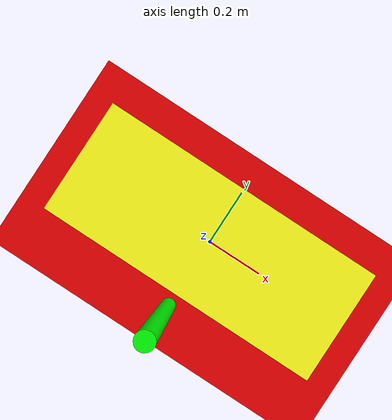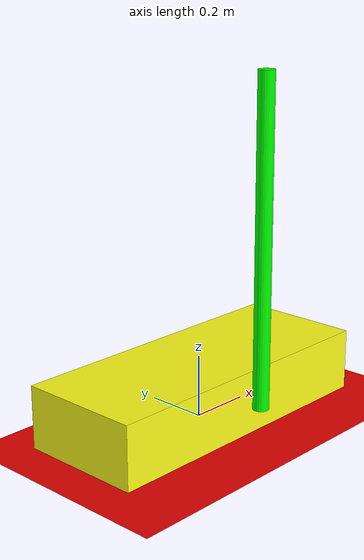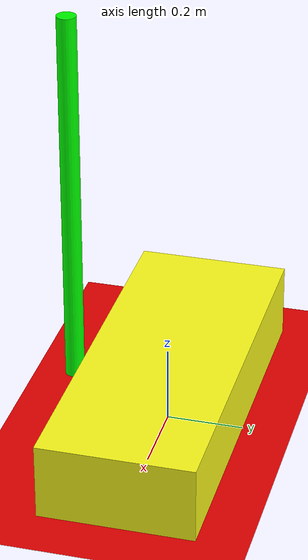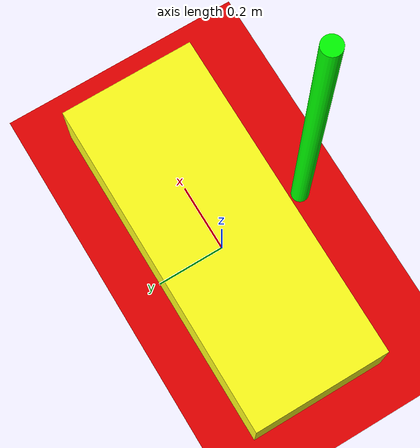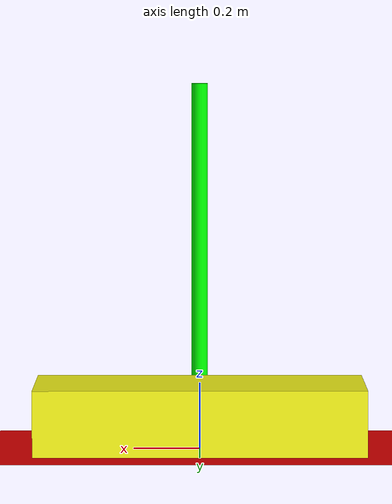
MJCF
<mujoco>
  <option gravity = "0 0 -9.81" />
   <worldbody>
      <light diffuse="0.5 0.5 0.5" pos="0 0 5" dir="0 0 -1"/>
			<geom type="plane" size="10 2 0.1" rgba=".9 0 0 1"/>
      <body pos="0 0 0.1" euler="0 0 0">
				<joint name='cart_x' type='slide' axis='1 0 0' pos = '0 0 0'/>
				<geom type="box" size=".5 .2 .1" rgba="1 1 0.1 1" mass="10"/>
		    <body pos="0 -0.25 0.5" euler="0 0 0">
		      <joint name="pend_joint" type="hinge" axis = "0 -1 0" pos = "0 0 -0.5"/>
		      <geom type="cylinder" size="0.025 0.5" rgba="0 1 0 1" mass="1"/>
          <camera name="robot_camera" pos="0 0 1" zaxis="0 0 1"/>
				</body>
      </body>
    </worldbody>
		<actuator>
      <motor name="force" joint="cart_x"  gear="1" />
      <motor name="torque1" joint="pend_joint"  gear="1" />
    </actuator>
</mujoco>
